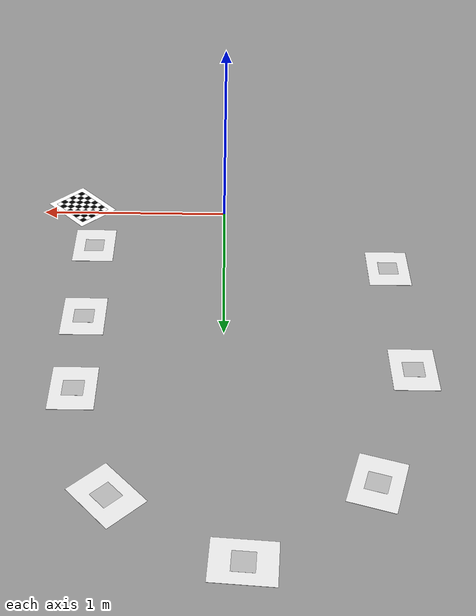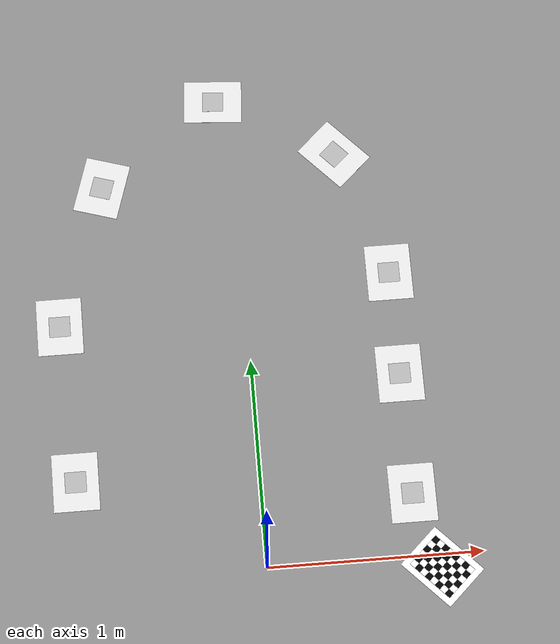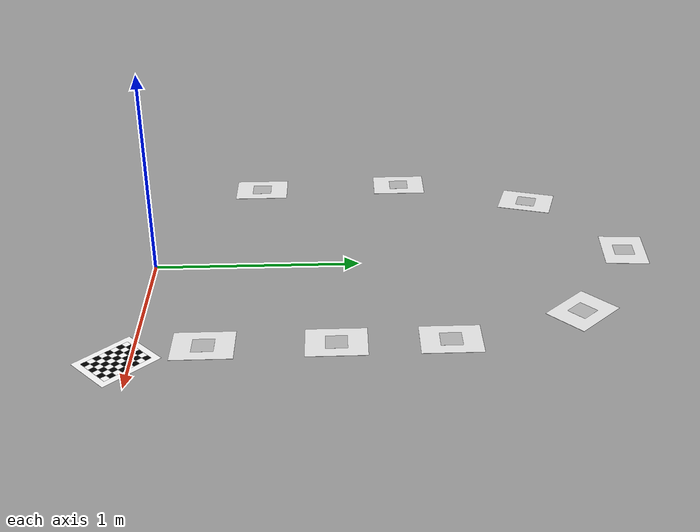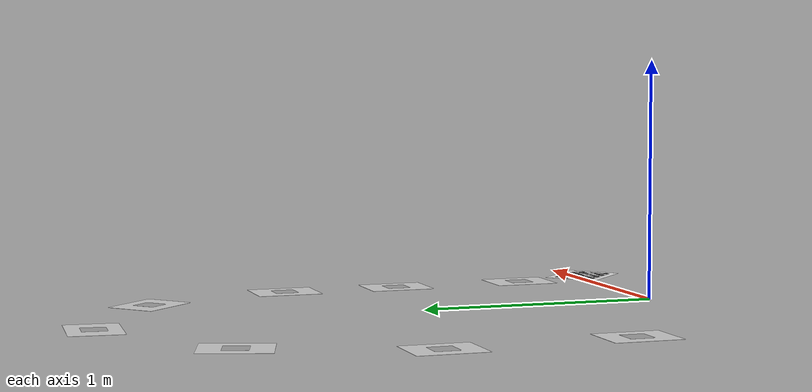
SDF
<?xml version="1.0" ?>
<sdf version="1.5">
    <model name='lane_markings'>
      <pose>0.0 0.0 0.0 0.0 0.0 0.0</pose>

      <include>
        <name>checkerboard 6 rows 8 columns, each square is 30cm x 30cm</name>
        <uri>model://checkerboard_6_8_0_03</uri>
        <pose>0.8 -0.06 0 0 0 0.760685</pose>
      </include>

      <include>
        <name>paper0</name>
        <uri>model://paper_letter_size</uri>
        <pose>0.696717 0.3 0 0 0 0.0</pose>
      </include>

      <include>
        <name>paper1</name>
        <uri>model://paper_letter_size</uri>
        <pose>0.693715 0.885508 0 0 0 0</pose>
      </include>

      <include>
        <name>paper2</name>
        <uri>model://paper_letter_size</uri>
        <pose>0.690265 1.39362 0 0 0 0</pose>
      </include>

      <include>
        <name>paper3</name>
        <uri>model://paper_letter_size</uri>
        <pose>0.482471 2.02232 0 0 0 0.75</pose>
      </include>

      <include>
        <name>paper4</name>
        <uri>model://paper_letter_size</uri>
        <pose>-0.082798 2.34506 0 0 0 1.5</pose>
      </include>

      <include>
        <name>paper5</name>
        <uri>model://paper_letter_size</uri>
        <pose>-0.649394 1.93556 0 0 0 -3.4415926</pose>
      </include>

      <include>
        <name>paper6</name>
        <uri>model://paper_letter_size</uri>
        <pose>-0.88953 1.24394 0 0 0 -3.1415926</pose>
      </include>

      <include>
        <name>paper7</name>
        <uri>model://paper_letter_size</uri>
        <pose>-0.856204 0.476271 0 0 0 -3.1415926</pose>
      </include>

      <static>1</static>
      <allow_auto_disable>1</allow_auto_disable>
    </model>
</sdf>

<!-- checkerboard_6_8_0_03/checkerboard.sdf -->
<sdf version="1.4">
  <model name="checkerboard_6_8_0_03">
  <static>true</static>
  <link name="checkerboard_6_8_0_03_body">
      <visual name="checker_0_0">
        <pose>-0.075 -0.105 0 0 0 0</pose>
        <geometry>
          <box>
            <size>0.03 0.03 0.0002</size>
          </box>
        </geometry>
        <material>
          <ambient>0 0 0 1</ambient>
          <diffuse>0 0 0 1</diffuse>
          <specular>0 0 0 1</specular>
          <emissive>0 0 0 1</emissive>
        </material>
      </visual>
      <visual name="checker_0_1">
        <pose>-0.075 -0.075 0 0 0 0</pose>
        <geometry>
          <box>
            <size>0.03 0.03 0.0002</size>
          </box>
        </geometry>
        <material>
          <ambient>1 1 1 1</ambient>
          <diffuse>1 1 1 1</diffuse>
          <specular>1 1 1 1</specular>
          <emissive>1 1 1 1</emissive>
        </material>
      </visual>
      <visual name="checker_0_2">
        <pose>-0.075 -0.045 0 0 0 0</pose>
        <geometry>
          <box>
            <size>0.03 0.03 0.0002</size>
          </box>
        </geometry>
        <material>
          <ambient>0 0 0 1</ambient>
          <diffuse>0 0 0 1</diffuse>
          <specular>0 0 0 1</specular>
          <emissive>0 0 0 1</emissive>
        </material>
      </visual>
      <visual name="checker_0_3">
        <pose>-0.075 -0.015 0 0 0 0</pose>
        <geometry>
          <box>
            <size>0.03 0.03 0.0002</size>
          </box>
        </geometry>
        <material>
          <ambient>1 1 1 1</ambient>
          <diffuse>1 1 1 1</diffuse>
          <specular>1 1 1 1</specular>
          <emissive>1 1 1 1</emissive>
        </material>
      </visual>
      <visual name="checker_0_4">
        <pose>-0.075 0.015000000000000013 0 0 0 0</pose>
        <geometry>
          <box>
            <size>0.03 0.03 0.0002</size>
          </box>
        </geometry>
        <material>
          <ambient>0 0 0 1</ambient>
          <diffuse>0 0 0 1</diffuse>
          <specular>0 0 0 1</specular>
          <emissive>0 0 0 1</emissive>
        </material>
      </visual>
      <visual name="checker_0_5">
        <pose>-0.075 0.044999999999999984 0 0 0 0</pose>
        <geometry>
          <box>
            <size>0.03 0.03 0.0002</size>
          </box>
        </geometry>
        <material>
          <ambient>1 1 1 1</ambient>
          <diffuse>1 1 1 1</diffuse>
          <specular>1 1 1 1</specular>
          <emissive>1 1 1 1</emissive>
        </material>
      </visual>
      <visual name="checker_0_6">
        <pose>-0.075 0.07500000000000001 0 0 0 0</pose>
        <geometry>
          <box>
            <size>0.03 0.03 0.0002</size>
          </box>
        </geometry>
        <material>
          <ambient>0 0 0 1</ambient>
          <diffuse>0 0 0 1</diffuse>
          <specular>0 0 0 1</specular>
          <emissive>0 0 0 1</emissive>
        </material>
      </visual>
      <visual name="checker_0_7">
        <pose>-0.075 0.10499999999999998 0 0 0 0</pose>
        <geometry>
          <box>
            <size>0.03 0.03 0.0002</size>
          </box>
        </geometry>
        <material>
          <ambient>1 1 1 1</ambient>
          <diffuse>1 1 1 1</diffuse>
          <specular>1 1 1 1</specular>
          <emissive>1 1 1 1</emissive>
        </material>
      </visual>
      <visual name="checker_1_0">
        <pose>-0.045 -0.105 0 0 0 0</pose>
        <geometry>
          <box>
            <size>0.03 0.03 0.0002</size>
          </box>
        </geometry>
        <material>
          <ambient>1 1 1 1</ambient>
          <diffuse>1 1 1 1</diffuse>
          <specular>1 1 1 1</specular>
          <emissive>1 1 1 1</emissive>
        </material>
      </visual>
      <visual name="checker_1_1">
        <pose>-0.045 -0.075 0 0 0 0</pose>
        <geometry>
          <box>
            <size>0.03 0.03 0.0002</size>
          </box>
        </geometry>
        <material>
          <ambient>0 0 0 1</ambient>
          <diffuse>0 0 0 1</diffuse>
          <specular>0 0 0 1</specular>
          <emissive>0 0 0 1</emissive>
        </material>
      </visual>
      <visual name="checker_1_2">
        <pose>-0.045 -0.045 0 0 0 0</pose>
        <geometry>
          <box>
            <size>0.03 0.03 0.0002</size>
          </box>
        </geometry>
        <material>
          <ambient>1 1 1 1</ambient>
          <diffuse>1 1 1 1</diffuse>
          <specular>1 1 1 1</specular>
          <emissive>1 1 1 1</emissive>
        </material>
      </visual>
      <visual name="checker_1_3">
        <pose>-0.045 -0.015 0 0 0 0</pose>
        <geometry>
          <box>
            <size>0.03 0.03 0.0002</size>
          </box>
        </geometry>
        <material>
          <ambient>0 0 0 1</ambient>
          <diffuse>0 0 0 1</diffuse>
          <specular>0 0 0 1</specular>
          <emissive>0 0 0 1</emissive>
        </material>
      </visual>
      <visual name="checker_1_4">
        <pose>-0.045 0.015000000000000013 0 0 0 0</pose>
        <geometry>
          <box>
            <size>0.03 0.03 0.0002</size>
          </box>
        </geometry>
        <material>
          <ambient>1 1 1 1</ambient>
          <diffuse>1 1 1 1</diffuse>
          <specular>1 1 1 1</specular>
          <emissive>1 1 1 1</emissive>
        </material>
      </visual>
      <visual name="checker_1_5">
        <pose>-0.045 0.044999999999999984 0 0 0 0</pose>
        <geometry>
          <box>
            <size>0.03 0.03 0.0002</size>
          </box>
        </geometry>
        <material>
          <ambient>0 0 0 1</ambient>
          <diffuse>0 0 0 1</diffuse>
          <specular>0 0 0 1</specular>
          <emissive>0 0 0 1</emissive>
        </material>
      </visual>
      <visual name="checker_1_6">
        <pose>-0.045 0.07500000000000001 0 0 0 0</pose>
        <geometry>
          <box>
            <size>0.03 0.03 0.0002</size>
          </box>
        </geometry>
        <material>
          <ambient>1 1 1 1</ambient>
          <diffuse>1 1 1 1</diffuse>
          <specular>1 1 1 1</specular>
          <emissive>1 1 1 1</emissive>
        </material>
      </visual>
      <visual name="checker_1_7">
        <pose>-0.045 0.10499999999999998 0 0 0 0</pose>
        <geometry>
          <box>
            <size>0.03 0.03 0.0002</size>
          </box>
        </geometry>
        <material>
          <ambient>0 0 0 1</ambient>
          <diffuse>0 0 0 1</diffuse>
          <specular>0 0 0 1</specular>
          <emissive>0 0 0 1</emissive>
        </material>
      </visual>
      <visual name="checker_2_0">
        <pose>-0.015 -0.105 0 0 0 0</pose>
        <geometry>
          <box>
            <size>0.03 0.03 0.0002</size>
          </box>
        </geometry>
        <material>
          <ambient>0 0 0 1</ambient>
          <diffuse>0 0 0 1</diffuse>
          <specular>0 0 0 1</specular>
          <emissive>0 0 0 1</emissive>
        </material>
      </visual>
      <visual name="checker_2_1">
        <pose>-0.015 -0.075 0 0 0 0</pose>
        <geometry>
          <box>
            <size>0.03 0.03 0.0002</size>
          </box>
        </geometry>
        <material>
          <ambient>1 1 1 1</ambient>
          <diffuse>1 1 1 1</diffuse>
          <specular>1 1 1 1</specular>
          <emissive>1 1 1 1</emissive>
        </material>
      </visual>
      <visual name="checker_2_2">
        <pose>-0.015 -0.045 0 0 0 0</pose>
        <geometry>
          <box>
            <size>0.03 0.03 0.0002</size>
          </box>
        </geometry>
        <material>
          <ambient>0 0 0 1</ambient>
          <diffuse>0 0 0 1</diffuse>
          <specular>0 0 0 1</specular>
          <emissive>0 0 0 1</emissive>
        </material>
      </visual>
      <visual name="checker_2_3">
        <pose>-0.015 -0.015 0 0 0 0</pose>
        <geometry>
          <box>
            <size>0.03 0.03 0.0002</size>
          </box>
        </geometry>
        <material>
          <ambient>1 1 1 1</ambient>
          <diffuse>1 1 1 1</diffuse>
          <specular>1 1 1 1</specular>
          <emissive>1 1 1 1</emissive>
        </material>
      </visual>
      <visual name="checker_2_4">
        <pose>-0.015 0.015000000000000013 0 0 0 0</pose>
        <geometry>
          <box>
            <size>0.03 0.03 0.0002</size>
          </box>
        </geometry>
        <material>
          <ambient>0 0 0 1</ambient>
          <diffuse>0 0 0 1</diffuse>
          <specular>0 0 0 1</specular>
          <emissive>0 0 0 1</emissive>
        </material>
      </visual>
      <visual name="checker_2_5">
        <pose>-0.015 0.044999999999999984 0 0 0 0</pose>
        <geometry>
          <box>
            <size>0.03 0.03 0.0002</size>
          </box>
        </geometry>
        <material>
          <ambient>1 1 1 1</ambient>
          <diffuse>1 1 1 1</diffuse>
          <specular>1 1 1 1</specular>
          <emissive>1 1 1 1</emissive>
        </material>
      </visual>
      <visual name="checker_2_6">
        <pose>-0.015 0.07500000000000001 0 0 0 0</pose>
        <geometry>
          <box>
            <size>0.03 0.03 0.0002</size>
          </box>
        </geometry>
        <material>
          <ambient>0 0 0 1</ambient>
          <diffuse>0 0 0 1</diffuse>
          <specular>0 0 0 1</specular>
          <emissive>0 0 0 1</emissive>
        </material>
      </visual>
      <visual name="checker_2_7">
        <pose>-0.015 0.10499999999999998 0 0 0 0</pose>
        <geometry>
          <box>
            <size>0.03 0.03 0.0002</size>
          </box>
        </geometry>
        <material>
          <ambient>1 1 1 1</ambient>
          <diffuse>1 1 1 1</diffuse>
          <specular>1 1 1 1</specular>
          <emissive>1 1 1 1</emissive>
        </material>
      </visual>
      <visual name="checker_3_0">
        <pose>0.015 -0.105 0 0 0 0</pose>
        <geometry>
          <box>
            <size>0.03 0.03 0.0002</size>
          </box>
        </geometry>
        <material>
          <ambient>1 1 1 1</ambient>
          <diffuse>1 1 1 1</diffuse>
          <specular>1 1 1 1</specular>
          <emissive>1 1 1 1</emissive>
        </material>
      </visual>
      <visual name="checker_3_1">
        <pose>0.015 -0.075 0 0 0 0</pose>
        <geometry>
          <box>
            <size>0.03 0.03 0.0002</size>
          </box>
        </geometry>
        <material>
          <ambient>0 0 0 1</ambient>
          <diffuse>0 0 0 1</diffuse>
          <specular>0 0 0 1</specular>
          <emissive>0 0 0 1</emissive>
        </material>
      </visual>
      <visual name="checker_3_2">
        <pose>0.015 -0.045 0 0 0 0</pose>
        <geometry>
          <box>
            <size>0.03 0.03 0.0002</size>
          </box>
        </geometry>
        <material>
          <ambient>1 1 1 1</ambient>
          <diffuse>1 1 1 1</diffuse>
          <specular>1 1 1 1</specular>
          <emissive>1 1 1 1</emissive>
        </material>
      </visual>
      <visual name="checker_3_3">
        <pose>0.015 -0.015 0 0 0 0</pose>
        <geometry>
          <box>
            <size>0.03 0.03 0.0002</size>
          </box>
        </geometry>
        <material>
          <ambient>0 0 0 1</ambient>
          <diffuse>0 0 0 1</diffuse>
          <specular>0 0 0 1</specular>
          <emissive>0 0 0 1</emissive>
        </material>
      </visual>
      <visual name="checker_3_4">
        <pose>0.015 0.015000000000000013 0 0 0 0</pose>
        <geometry>
          <box>
            <size>0.03 0.03 0.0002</size>
          </box>
        </geometry>
        <material>
          <ambient>1 1 1 1</ambient>
          <diffuse>1 1 1 1</diffuse>
          <specular>1 1 1 1</specular>
          <emissive>1 1 1 1</emissive>
        </material>
      </visual>
      <visual name="checker_3_5">
        <pose>0.015 0.044999999999999984 0 0 0 0</pose>
        <geometry>
          <box>
            <size>0.03 0.03 0.0002</size>
          </box>
        </geometry>
        <material>
          <ambient>0 0 0 1</ambient>
          <diffuse>0 0 0 1</diffuse>
          <specular>0 0 0 1</specular>
          <emissive>0 0 0 1</emissive>
        </material>
      </visual>
      <visual name="checker_3_6">
        <pose>0.015 0.07500000000000001 0 0 0 0</pose>
        <geometry>
          <box>
            <size>0.03 0.03 0.0002</size>
          </box>
        </geometry>
        <material>
          <ambient>1 1 1 1</ambient>
          <diffuse>1 1 1 1</diffuse>
          <specular>1 1 1 1</specular>
          <emissive>1 1 1 1</emissive>
        </material>
      </visual>
      <visual name="checker_3_7">
        <pose>0.015 0.10499999999999998 0 0 0 0</pose>
        <geometry>
          <box>
            <size>0.03 0.03 0.0002</size>
          </box>
        </geometry>
        <material>
          <ambient>0 0 0 1</ambient>
          <diffuse>0 0 0 1</diffuse>
          <specular>0 0 0 1</specular>
          <emissive>0 0 0 1</emissive>
        </material>
      </visual>
      <visual name="checker_4_0">
        <pose>0.04500000000000001 -0.105 0 0 0 0</pose>
        <geometry>
          <box>
            <size>0.03 0.03 0.0002</size>
          </box>
        </geometry>
        <material>
          <ambient>0 0 0 1</ambient>
          <diffuse>0 0 0 1</diffuse>
          <specular>0 0 0 1</specular>
          <emissive>0 0 0 1</emissive>
        </material>
      </visual>
      <visual name="checker_4_1">
        <pose>0.04500000000000001 -0.075 0 0 0 0</pose>
        <geometry>
          <box>
            <size>0.03 0.03 0.0002</size>
          </box>
        </geometry>
        <material>
          <ambient>1 1 1 1</ambient>
          <diffuse>1 1 1 1</diffuse>
          <specular>1 1 1 1</specular>
          <emissive>1 1 1 1</emissive>
        </material>
      </visual>
      <visual name="checker_4_2">
        <pose>0.04500000000000001 -0.045 0 0 0 0</pose>
        <geometry>
          <box>
            <size>0.03 0.03 0.0002</size>
          </box>
        </geometry>
        <material>
          <ambient>0 0 0 1</ambient>
          <diffuse>0 0 0 1</diffuse>
          <specular>0 0 0 1</specular>
          <emissive>0 0 0 1</emissive>
        </material>
      </visual>
      <visual name="checker_4_3">
        <pose>0.04500000000000001 -0.015 0 0 0 0</pose>
        <geometry>
          <box>
            <size>0.03 0.03 0.0002</size>
          </box>
        </geometry>
        <material>
          <ambient>1 1 1 1</ambient>
          <diffuse>1 1 1 1</diffuse>
          <specular>1 1 1 1</specular>
          <emissive>1 1 1 1</emissive>
        </material>
      </visual>
      <visual name="checker_4_4">
        <pose>0.04500000000000001 0.015000000000000013 0 0 0 0</pose>
        <geometry>
          <box>
            <size>0.03 0.03 0.0002</size>
          </box>
        </geometry>
        <material>
          <ambient>0 0 0 1</ambient>
          <diffuse>0 0 0 1</diffuse>
          <specular>0 0 0 1</specular>
          <emissive>0 0 0 1</emissive>
        </material>
      </visual>
      <visual name="checker_4_5">
        <pose>0.04500000000000001 0.044999999999999984 0 0 0 0</pose>
        <geometry>
          <box>
            <size>0.03 0.03 0.0002</size>
          </box>
        </geometry>
        <material>
          <ambient>1 1 1 1</ambient>
          <diffuse>1 1 1 1</diffuse>
          <specular>1 1 1 1</specular>
          <emissive>1 1 1 1</emissive>
        </material>
      </visual>
      <visual name="checker_4_6">
        <pose>0.04500000000000001 0.07500000000000001 0 0 0 0</pose>
        <geometry>
          <box>
            <size>0.03 0.03 0.0002</size>
          </box>
        </geometry>
        <material>
          <ambient>0 0 0 1</ambient>
          <diffuse>0 0 0 1</diffuse>
          <specular>0 0 0 1</specular>
          <emissive>0 0 0 1</emissive>
        </material>
      </visual>
      <visual name="checker_4_7">
        <pose>0.04500000000000001 0.10499999999999998 0 0 0 0</pose>
        <geometry>
          <box>
            <size>0.03 0.03 0.0002</size>
          </box>
        </geometry>
        <material>
          <ambient>1 1 1 1</ambient>
          <diffuse>1 1 1 1</diffuse>
          <specular>1 1 1 1</specular>
          <emissive>1 1 1 1</emissive>
        </material>
      </visual>
      <visual name="checker_5_0">
        <pose>0.07499999999999998 -0.105 0 0 0 0</pose>
        <geometry>
          <box>
            <size>0.03 0.03 0.0002</size>
          </box>
        </geometry>
        <material>
          <ambient>1 1 1 1</ambient>
          <diffuse>1 1 1 1</diffuse>
          <specular>1 1 1 1</specular>
          <emissive>1 1 1 1</emissive>
        </material>
      </visual>
      <visual name="checker_5_1">
        <pose>0.07499999999999998 -0.075 0 0 0 0</pose>
        <geometry>
          <box>
            <size>0.03 0.03 0.0002</size>
          </box>
        </geometry>
        <material>
          <ambient>0 0 0 1</ambient>
          <diffuse>0 0 0 1</diffuse>
          <specular>0 0 0 1</specular>
          <emissive>0 0 0 1</emissive>
        </material>
      </visual>
      <visual name="checker_5_2">
        <pose>0.07499999999999998 -0.045 0 0 0 0</pose>
        <geometry>
          <box>
            <size>0.03 0.03 0.0002</size>
          </box>
        </geometry>
        <material>
          <ambient>1 1 1 1</ambient>
          <diffuse>1 1 1 1</diffuse>
          <specular>1 1 1 1</specular>
          <emissive>1 1 1 1</emissive>
        </material>
      </visual>
      <visual name="checker_5_3">
        <pose>0.07499999999999998 -0.015 0 0 0 0</pose>
        <geometry>
          <box>
            <size>0.03 0.03 0.0002</size>
          </box>
        </geometry>
        <material>
          <ambient>0 0 0 1</ambient>
          <diffuse>0 0 0 1</diffuse>
          <specular>0 0 0 1</specular>
          <emissive>0 0 0 1</emissive>
        </material>
      </visual>
      <visual name="checker_5_4">
        <pose>0.07499999999999998 0.015000000000000013 0 0 0 0</pose>
        <geometry>
          <box>
            <size>0.03 0.03 0.0002</size>
          </box>
        </geometry>
        <material>
          <ambient>1 1 1 1</ambient>
          <diffuse>1 1 1 1</diffuse>
          <specular>1 1 1 1</specular>
          <emissive>1 1 1 1</emissive>
        </material>
      </visual>
      <visual name="checker_5_5">
        <pose>0.07499999999999998 0.044999999999999984 0 0 0 0</pose>
        <geometry>
          <box>
            <size>0.03 0.03 0.0002</size>
          </box>
        </geometry>
        <material>
          <ambient>0 0 0 1</ambient>
          <diffuse>0 0 0 1</diffuse>
          <specular>0 0 0 1</specular>
          <emissive>0 0 0 1</emissive>
        </material>
      </visual>
      <visual name="checker_5_6">
        <pose>0.07499999999999998 0.07500000000000001 0 0 0 0</pose>
        <geometry>
          <box>
            <size>0.03 0.03 0.0002</size>
          </box>
        </geometry>
        <material>
          <ambient>1 1 1 1</ambient>
          <diffuse>1 1 1 1</diffuse>
          <specular>1 1 1 1</specular>
          <emissive>1 1 1 1</emissive>
        </material>
      </visual>
      <visual name="checker_5_7">
        <pose>0.07499999999999998 0.10499999999999998 0 0 0 0</pose>
        <geometry>
          <box>
            <size>0.03 0.03 0.0002</size>
          </box>
        </geometry>
        <material>
          <ambient>0 0 0 1</ambient>
          <diffuse>0 0 0 1</diffuse>
          <specular>0 0 0 1</specular>
          <emissive>0 0 0 1</emissive>
        </material>
      </visual>
      <visual name="checker_backdrop">
        <pose>0 0 0 0 0 0</pose>
        <geometry>
          <box>
            <size>0.24 0.3 0.0001</size>
          </box>
        </geometry>
        <material>
          <ambient>1 1 1 1</ambient>
          <diffuse>1 1 1 1</diffuse>
          <specular>1 1 1 1</specular>
          <emissive>1 1 1 1</emissive>
        </material>
      </visual>
    </link>
  </model>
</sdf>

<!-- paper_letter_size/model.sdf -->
<sdf version="1.5">
    <model name='paper_letter_size'>
    <pose>0.0 0.0 0.0 0.0 0.0 0.0</pose>
      <link name='link'>
        <self_collide>0</self_collide>
        <enable_wind>0</enable_wind>
        <kinematic>0</kinematic>
        <pose>0 0 0 0 -0 0</pose>
        <gravity>1</gravity>
        <visual name='visual'>
          <geometry>
            <box>
              <size>0.2159 0.2794 0.001</size>
            </box>
          </geometry>
          <material>
            <script>
              <name>Gazebo/White</name>
              <uri>file://media/materials/scripts/gazebo.material</uri>
            </script>
            <shader type='pixel'>
              <normal_map>__default__</normal_map>
            </shader>
            <ambient>1 1 1 1</ambient>
            <diffuse>1 1 1 1</diffuse>
            <specular>0 0 0 1</specular>
            <emissive>0 0 0 1</emissive>
          </material>
          <pose>0 0 0 0 -0 0</pose>
          <transparency>0</transparency>
          <cast_shadows>1</cast_shadows>
        </visual>
      </link>
      <static>1</static>

      <include>
        <name>aruco</name>
        <static>true</static>       <!--no interaction-->
        <uri>model://aruco_marker</uri>
        <pose>0.0 0.0 0.001 1.57 -1.57 -1.57</pose>
      </include>

      <allow_auto_disable>1</allow_auto_disable>
    </model>
</sdf>

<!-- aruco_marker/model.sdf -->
<sdf version="1.6">
  <model name="aruco_marker">
    <static>true</static>       <!--no interaction-->
    <link name="link">
      <inertial>
        <pose>0 0 0 0 0 0</pose>
        <mass>0.001</mass>
        <inertia>
          <ixx>3.7499999999999997e-06</ixx>
          <ixy>0.0</ixy>
          <ixz>0.0</ixz>
          <iyy>1.8750008333333333e-06</iyy>
          <iyz>0.0</iyz>
          <izz>1.8750008333333333e-06</izz>
        </inertia>
      </inertial>
      <visual name="front_visual">
        <pose>0.00005 0 0 0 0 0</pose>
        <geometry>
          <box>
            <size>0.0001 0.10 0.10</size>
          </box>
        </geometry>
        <material>
          <script>
            <uri>model://aruco_marker/materials/scripts</uri>
            <uri>model://aruco_marker/materials/textures</uri>
            <name>Marker</name>
          </script>
        </material>
      </visual>
      <!-- Hide the marker from the back -->
      <visual name="rear_visual">
        <pose>-0.00005 0 0 0 0 0</pose>
        <geometry>
          <box>
            <size>0.0001 0.10 0.10</size>
          </box>
        </geometry>
      </visual>
      <collision name="collision">
        <pose>0 0 0 0 0 0</pose>
        <geometry>
          <box>
            <size>0.0001 0.10 0.10</size>
          </box>
        </geometry>
      </collision>
    </link>
  </model>
</sdf>
